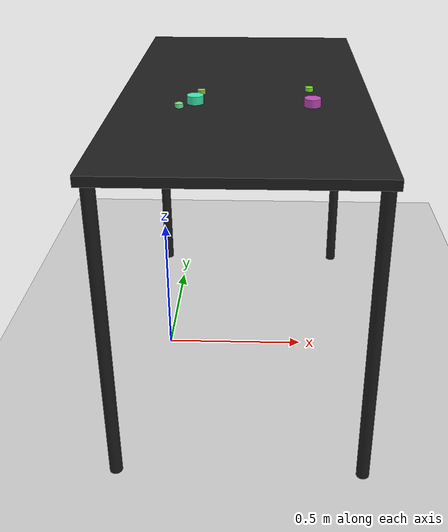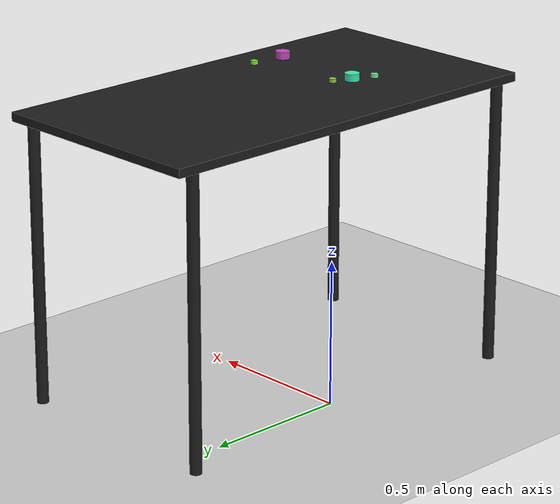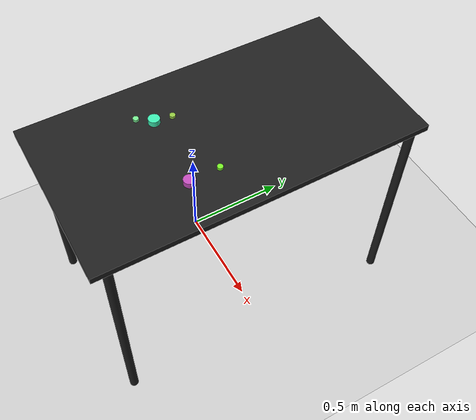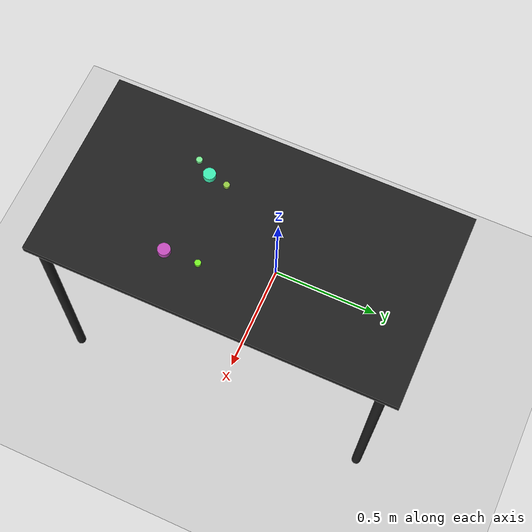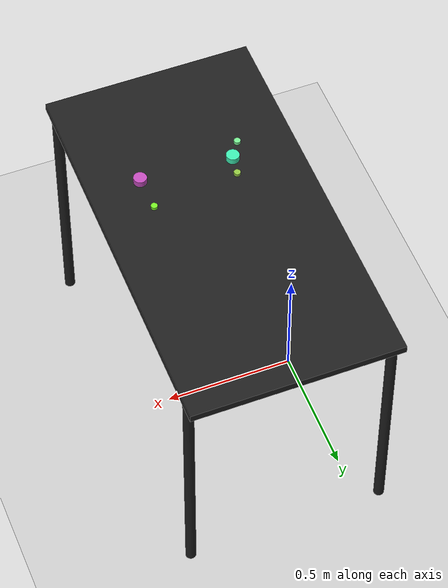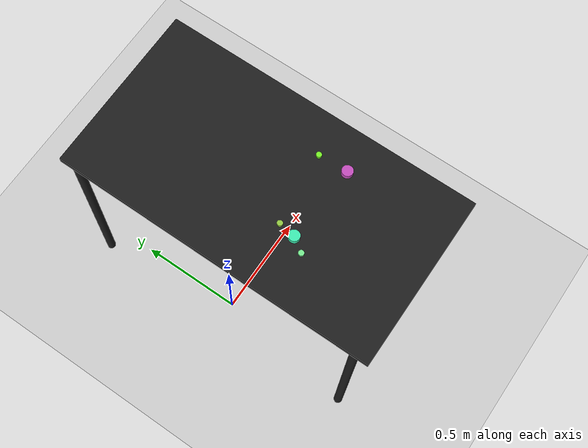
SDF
<?xml version="1.0" ?>
<sdf version="1.6">
  <world name="arm_world">
    <plugin filename="gz-sim-physics-system" name="gz::sim::systems::Physics">
      <engine>
        <filename>libgz-physics-bullet-featherstone-plugin.so</filename>
      </engine>
    </plugin>
    <plugin filename="gz-sim-user-commands-system" name="gz::sim::systems::UserCommands"/>
    <plugin filename="gz-sim-scene-broadcaster-system" name="gz::sim::systems::SceneBroadcaster"/>
    <plugin filename="gz-sim-sensors-system" name="gz::sim::systems::Sensors">
      <render_engine>ogre2</render_engine>
    </plugin>
    <gravity>0.0 0.0 -9.8</gravity>
    <scene>
      <shadows>false</shadows>
    </scene>
    <gui>
      <camera name="user_camera">
        <pose>0.75 -0.75 1.4 0 0.29 2.21</pose>
      </camera>
    </gui>
    <include>
      <uri>https://fuel.gazebosim.org/1.0/OpenRobotics/models/Sun</uri>
    </include>
    <model name="table">
      <static>true</static>
      <include>
        <uri>model://table</uri>
      </include>
      <pose>0.29 0 0 0 0 1.5708</pose>
    </model>
    <model name="ground_plane">
      <static>true</static>
      <link name="link">
        <collision name="collision">
          <geometry>
            <plane>
              <normal>0 0 1</normal>
            </plane>
          </geometry>
          <surface>
            <friction>
              <ode>
                <mu>1.0</mu>
                <mu2>1.0</mu2>
              </ode>
            </friction>
          </surface>
        </collision>
        <visual name="visual">
          <geometry>
            <plane>
              <normal>0 0 1</normal>
              <size>100 100</size>
            </plane>
          </geometry>
          <material>
            <ambient>0.8 0.8 0.8 1</ambient>
            <diffuse>0.8 0.8 0.8 1</diffuse>
            <specular>0.8 0.8 0.8 1</specular>
          </material>
        </visual>
      </link>
    </model>
    <model name="cylinder_s_0">
      <pose>0.105 -0.296 1.05 0 0 2.21</pose>
      <link name="cylinder_s_0_link">
        <inertial>
          <mass>0.05</mass>
          <inertia>
            <ixx>2.04e-7</ixx>
            <iyy>2.04e-7</iyy>
            <izz>3.9e-8</izz>
            <ixy>0</ixy>
            <ixz>0</ixz>
            <iyz>0</iyz>
          </inertia>
        </inertial>
        <collision name="cylinder_s_0_collision">
          <geometry>
            <cylinder>
              <radius>0.0125</radius>
              <length>0.0125</length>
            </cylinder>
          </geometry>
          <surface>
            <friction>
              <ode>
                <mu>0.8</mu>
                <mu2>0.8</mu2>
                <fdir1>0 0 1</fdir1>
                <slip1>0.001</slip1>
                <slip2>0.001</slip2>
              </ode>
              <torsional>
                <coefficient>0.1</coefficient>
                <surface_radius>0.015</surface_radius>
                <use_patch_radius>true</use_patch_radius>
              </torsional>
            </friction>
            <contact>
              <ode>
                <kp>1e5</kp>
                <kd>10</kd>
                <max_vel>0.1</max_vel>
                <min_depth>0.001</min_depth>
                <soft_cfm>0.01</soft_cfm>
                <soft_erp>0.2</soft_erp>
              </ode>
            </contact>
            <bounce>
              <restitution_coefficient>0.2</restitution_coefficient>
              <threshold>0.01</threshold>
            </bounce>
          </surface>
        </collision>
        <visual name="cylinder_s_0_visual">
          <geometry>
            <cylinder>
              <radius>0.0125</radius>
              <length>0.0125</length>
            </cylinder>
          </geometry>
          <material>
            <ambient>0.47 0.93 0.57 1</ambient>
            <diffuse>0.47 0.93 0.57 1</diffuse>
          </material>
        </visual>
        <velocity_decay>
          <linear>1</linear>
          <angular>1</angular>
        </velocity_decay>
      </link>
    </model>
    <model name="cylinder_s_1">
      <pose>0.493 -0.12 1.05 0 0 2.27</pose>
      <link name="cylinder_s_1_link">
        <inertial>
          <mass>0.05</mass>
          <inertia>
            <ixx>2.04e-7</ixx>
            <iyy>2.04e-7</iyy>
            <izz>3.9e-8</izz>
            <ixy>0</ixy>
            <ixz>0</ixz>
            <iyz>0</iyz>
          </inertia>
        </inertial>
        <collision name="cylinder_s_1_collision">
          <geometry>
            <cylinder>
              <radius>0.0125</radius>
              <length>0.0125</length>
            </cylinder>
          </geometry>
          <surface>
            <friction>
              <ode>
                <mu>0.8</mu>
                <mu2>0.8</mu2>
                <fdir1>0 0 1</fdir1>
                <slip1>0.001</slip1>
                <slip2>0.001</slip2>
              </ode>
              <torsional>
                <coefficient>0.1</coefficient>
                <surface_radius>0.015</surface_radius>
                <use_patch_radius>true</use_patch_radius>
              </torsional>
            </friction>
            <contact>
              <ode>
                <kp>1e5</kp>
                <kd>10</kd>
                <max_vel>0.1</max_vel>
                <min_depth>0.001</min_depth>
                <soft_cfm>0.01</soft_cfm>
                <soft_erp>0.2</soft_erp>
              </ode>
            </contact>
            <bounce>
              <restitution_coefficient>0.2</restitution_coefficient>
              <threshold>0.01</threshold>
            </bounce>
          </surface>
        </collision>
        <visual name="cylinder_s_1_visual">
          <geometry>
            <cylinder>
              <radius>0.0125</radius>
              <length>0.0125</length>
            </cylinder>
          </geometry>
          <material>
            <ambient>0.47 0.95 0.15 1</ambient>
            <diffuse>0.47 0.95 0.15 1</diffuse>
          </material>
        </visual>
        <velocity_decay>
          <linear>1</linear>
          <angular>1</angular>
        </velocity_decay>
      </link>
    </model>
    <model name="cylinder_m_2">
      <pose>0.497 -0.255 1.05 0 0 0.94</pose>
      <link name="cylinder_m_2_link">
        <inertial>
          <mass>0.05</mass>
          <inertia>
            <ixx>2.04e-7</ixx>
            <iyy>2.04e-7</iyy>
            <izz>3.9e-8</izz>
            <ixy>0</ixy>
            <ixz>0</ixz>
            <iyz>0</iyz>
          </inertia>
        </inertial>
        <collision name="cylinder_m_2_collision">
          <geometry>
            <cylinder>
              <radius>0.025</radius>
              <length>0.025</length>
            </cylinder>
          </geometry>
          <surface>
            <friction>
              <ode>
                <mu>0.8</mu>
                <mu2>0.8</mu2>
                <fdir1>0 0 1</fdir1>
                <slip1>0.001</slip1>
                <slip2>0.001</slip2>
              </ode>
              <torsional>
                <coefficient>0.1</coefficient>
                <surface_radius>0.015</surface_radius>
                <use_patch_radius>true</use_patch_radius>
              </torsional>
            </friction>
            <contact>
              <ode>
                <kp>1e5</kp>
                <kd>10</kd>
                <max_vel>0.1</max_vel>
                <min_depth>0.001</min_depth>
                <soft_cfm>0.01</soft_cfm>
                <soft_erp>0.2</soft_erp>
              </ode>
            </contact>
            <bounce>
              <restitution_coefficient>0.2</restitution_coefficient>
              <threshold>0.01</threshold>
            </bounce>
          </surface>
        </collision>
        <visual name="cylinder_m_2_visual">
          <geometry>
            <cylinder>
              <radius>0.025</radius>
              <length>0.025</length>
            </cylinder>
          </geometry>
          <material>
            <ambient>0.77 0.3 0.74 1</ambient>
            <diffuse>0.77 0.3 0.74 1</diffuse>
          </material>
        </visual>
        <velocity_decay>
          <linear>1</linear>
          <angular>1</angular>
        </velocity_decay>
      </link>
    </model>
    <model name="cylinder_s_3">
      <pose>0.16 -0.157 1.05 0 0 6.2</pose>
      <link name="cylinder_s_3_link">
        <inertial>
          <mass>0.05</mass>
          <inertia>
            <ixx>2.04e-7</ixx>
            <iyy>2.04e-7</iyy>
            <izz>3.9e-8</izz>
            <ixy>0</ixy>
            <ixz>0</ixz>
            <iyz>0</iyz>
          </inertia>
        </inertial>
        <collision name="cylinder_s_3_collision">
          <geometry>
            <cylinder>
              <radius>0.0125</radius>
              <length>0.0125</length>
            </cylinder>
          </geometry>
          <surface>
            <friction>
              <ode>
                <mu>0.8</mu>
                <mu2>0.8</mu2>
                <fdir1>0 0 1</fdir1>
                <slip1>0.001</slip1>
                <slip2>0.001</slip2>
              </ode>
              <torsional>
                <coefficient>0.1</coefficient>
                <surface_radius>0.015</surface_radius>
                <use_patch_radius>true</use_patch_radius>
              </torsional>
            </friction>
            <contact>
              <ode>
                <kp>1e5</kp>
                <kd>10</kd>
                <max_vel>0.1</max_vel>
                <min_depth>0.001</min_depth>
                <soft_cfm>0.01</soft_cfm>
                <soft_erp>0.2</soft_erp>
              </ode>
            </contact>
            <bounce>
              <restitution_coefficient>0.2</restitution_coefficient>
              <threshold>0.01</threshold>
            </bounce>
          </surface>
        </collision>
        <visual name="cylinder_s_3_visual">
          <geometry>
            <cylinder>
              <radius>0.0125</radius>
              <length>0.0125</length>
            </cylinder>
          </geometry>
          <material>
            <ambient>0.58 0.79 0.26 1</ambient>
            <diffuse>0.58 0.79 0.26 1</diffuse>
          </material>
        </visual>
        <velocity_decay>
          <linear>1</linear>
          <angular>1</angular>
        </velocity_decay>
      </link>
    </model>
    <model name="cylinder_m_4">
      <pose>0.147 -0.234 1.05 0 0 2.12</pose>
      <link name="cylinder_m_4_link">
        <inertial>
          <mass>0.05</mass>
          <inertia>
            <ixx>2.04e-7</ixx>
            <iyy>2.04e-7</iyy>
            <izz>3.9e-8</izz>
            <ixy>0</ixy>
            <ixz>0</ixz>
            <iyz>0</iyz>
          </inertia>
        </inertial>
        <collision name="cylinder_m_4_collision">
          <geometry>
            <cylinder>
              <radius>0.025</radius>
              <length>0.025</length>
            </cylinder>
          </geometry>
          <surface>
            <friction>
              <ode>
                <mu>0.8</mu>
                <mu2>0.8</mu2>
                <fdir1>0 0 1</fdir1>
                <slip1>0.001</slip1>
                <slip2>0.001</slip2>
              </ode>
              <torsional>
                <coefficient>0.1</coefficient>
                <surface_radius>0.015</surface_radius>
                <use_patch_radius>true</use_patch_radius>
              </torsional>
            </friction>
            <contact>
              <ode>
                <kp>1e5</kp>
                <kd>10</kd>
                <max_vel>0.1</max_vel>
                <min_depth>0.001</min_depth>
                <soft_cfm>0.01</soft_cfm>
                <soft_erp>0.2</soft_erp>
              </ode>
            </contact>
            <bounce>
              <restitution_coefficient>0.2</restitution_coefficient>
              <threshold>0.01</threshold>
            </bounce>
          </surface>
        </collision>
        <visual name="cylinder_m_4_visual">
          <geometry>
            <cylinder>
              <radius>0.025</radius>
              <length>0.025</length>
            </cylinder>
          </geometry>
          <material>
            <ambient>0.24 0.93 0.7 1</ambient>
            <diffuse>0.24 0.93 0.7 1</diffuse>
          </material>
        </visual>
        <velocity_decay>
          <linear>1</linear>
          <angular>1</angular>
        </velocity_decay>
      </link>
    </model>
  </world>
</sdf>

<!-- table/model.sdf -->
<sdf version="1.5">
  <model name="table">
    <static>true</static>
    <link name="link">
      <collision name="surface">
        <pose>0 0 1.0 0 0 0</pose>
        <geometry>
          <box>
            <size>1.5 0.8 0.03</size>
          </box>
        </geometry>
        <surface>
          <friction>
            <ode>
              <mu>0.6</mu>
              <mu2>0.6</mu2>
            </ode>
          </friction>
        </surface>
      </collision>
      <visual name="surface">
        <pose>0 0 1.0 0 0 0</pose>
        <geometry>
          <box>
            <size>1.5 0.8 0.03</size>
          </box>
        </geometry>
        <material>
          <script>
            <uri>file://media/materials/scripts/gazebo.material</uri>
            <name>Gazebo/Black</name>
          </script>
        </material>
      </visual>
      <collision name="front_left_leg">
        <pose>0.68 0.38 0.5 0 0 0</pose>
        <geometry>
          <cylinder>
            <radius>0.02</radius>
            <length>1.0</length>
          </cylinder>
        </geometry>
      </collision>
      <visual name="front_left_leg">
        <pose>0.68 0.38 0.5 0 0 0</pose>
        <geometry>
          <cylinder>
            <radius>0.02</radius>
            <length>1.0</length>
          </cylinder>
        </geometry>
        <material>
          <script>
            <uri>file://media/materials/scripts/gazebo.material</uri>
            <name>Gazebo/Black</name>
          </script>
        </material>
      </visual>
      <collision name="front_right_leg">
        <pose>0.68 -0.38 0.5 0 0 0</pose>
        <geometry>
          <cylinder>
            <radius>0.02</radius>
            <length>1.0</length>
          </cylinder>
        </geometry>
      </collision>
      <visual name="front_right_leg">
        <pose>0.68 -0.38 0.5 0 0 0</pose>
        <geometry>
          <cylinder>
            <radius>0.02</radius>
            <length>1.0</length>
          </cylinder>
        </geometry>
        <material>
          <script>
            <uri>file://media/materials/scripts/gazebo.material</uri>
            <name>Gazebo/Black</name>
          </script>
        </material>
      </visual>
      <collision name="back_right_leg">
        <pose>-0.68 -0.38 0.5 0 0 0</pose>
        <geometry>
          <cylinder>
            <radius>0.02</radius>
            <length>1.0</length>
          </cylinder>
        </geometry>
      </collision>
      <visual name="back_right_leg">
        <pose>-0.68 -0.38 0.5 0 0 0</pose>
        <geometry>
          <cylinder>
            <radius>0.02</radius>
            <length>1.0</length>
          </cylinder>
        </geometry>
        <material>
          <script>
            <uri>file://media/materials/scripts/gazebo.material</uri>
            <name>Gazebo/Black</name>
          </script>
        </material>
      </visual>
      <collision name="back_left_leg">
        <pose>-0.68 0.38 0.5 0 0 0</pose>
        <geometry>
          <cylinder>
            <radius>0.02</radius>
            <length>1.0</length>
          </cylinder>
        </geometry>
      </collision>
      <visual name="back_left_leg">
        <pose>-0.68 0.38 0.5 0 0 0</pose>
        <geometry>
          <cylinder>
            <radius>0.02</radius>
            <length>1.0</length>
          </cylinder>
        </geometry>
        <material>
          <script>
            <uri>file://media/materials/scripts/gazebo.material</uri>
            <name>Gazebo/Black</name>
          </script>
        </material>
      </visual>
    </link>
  </model>
</sdf>
